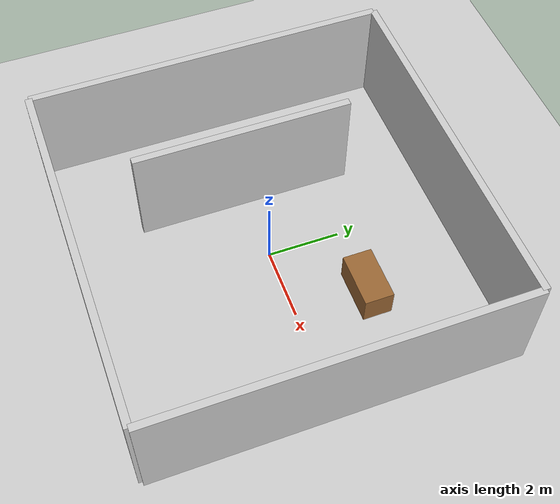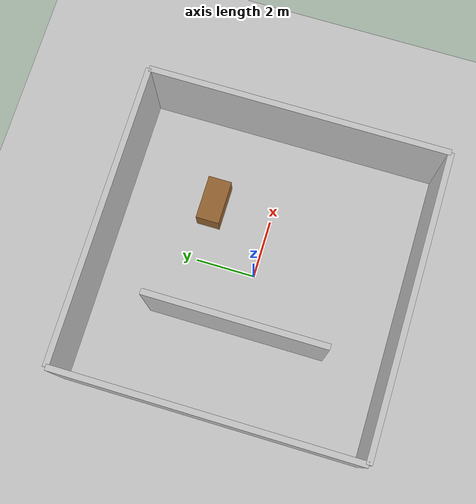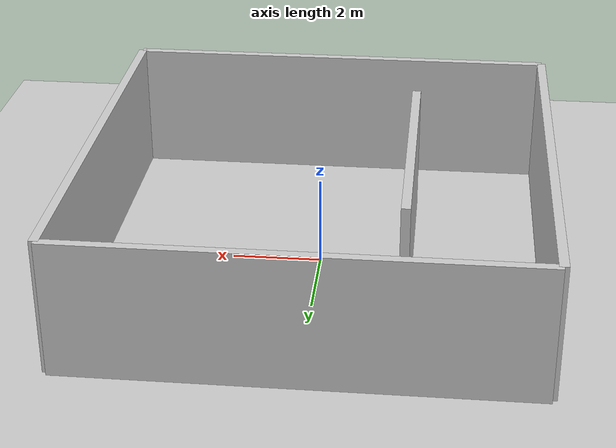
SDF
<?xml version="1.0" ?>
<sdf version="1.6">
  <world name="office_world">
    <include>
      <uri>model://sun</uri>
    </include>
    <include>
      <uri>model://ground_plane</uri>
    </include>

    <!-- Office walls -->
    <model name="office_walls">
      <static>true</static>
      <link name="walls">
        <collision name="wall1_collision">
          <pose>0 5 1.5 0 0 0</pose>
          <geometry>
            <box>
              <size>10 0.2 3</size>
            </box>
          </geometry>
        </collision>
        <visual name="wall1_visual">
          <pose>0 5 1.5 0 0 0</pose>
          <geometry>
            <box>
              <size>10 0.2 3</size>
            </box>
          </geometry>
          <material>
            <ambient>0.8 0.8 0.8 1</ambient>
            <diffuse>0.8 0.8 0.8 1</diffuse>
          </material>
        </visual>

        <collision name="wall2_collision">
          <pose>0 -5 1.5 0 0 0</pose>
          <geometry>
            <box>
              <size>10 0.2 3</size>
            </box>
          </geometry>
        </collision>
        <visual name="wall2_visual">
          <pose>0 -5 1.5 0 0 0</pose>
          <geometry>
            <box>
              <size>10 0.2 3</size>
            </box>
          </geometry>
          <material>
            <ambient>0.8 0.8 0.8 1</ambient>
            <diffuse>0.8 0.8 0.8 1</diffuse>
          </material>
        </visual>

        <collision name="wall3_collision">
          <pose>5 0 1.5 0 0 1.5708</pose>
          <geometry>
            <box>
              <size>10 0.2 3</size>
            </box>
          </geometry>
        </collision>
        <visual name="wall3_visual">
          <pose>5 0 1.5 0 0 1.5708</pose>
          <geometry>
            <box>
              <size>10 0.2 3</size>
            </box>
          </geometry>
          <material>
            <ambient>0.8 0.8 0.8 1</ambient>
            <diffuse>0.8 0.8 0.8 1</diffuse>
          </material>
        </visual>

        <collision name="wall4_collision">
          <pose>-5 0 1.5 0 0 1.5708</pose>
          <geometry>
            <box>
              <size>10 0.2 3</size>
            </box>
          </geometry>
        </collision>
        <visual name="wall4_visual">
          <pose>-5 0 1.5 0 0 1.5708</pose>
          <geometry>
            <box>
              <size>10 0.2 3</size>
            </box>
          </geometry>
          <material>
            <ambient>0.8 0.8 0.8 1</ambient>
            <diffuse>0.8 0.8 0.8 1</diffuse>
          </material>
        </visual>

        <!-- Interior walls and obstacles -->
        <collision name="interior_wall1_collision">
          <pose>-2 0 1.5 0 0 0</pose>
          <geometry>
            <box>
              <size>0.2 6 3</size>
            </box>
          </geometry>
        </collision>
        <visual name="interior_wall1_visual">
          <pose>-2 0 1.5 0 0 0</pose>
          <geometry>
            <box>
              <size>0.2 6 3</size>
            </box>
          </geometry>
          <material>
            <ambient>0.8 0.8 0.8 1</ambient>
            <diffuse>0.8 0.8 0.8 1</diffuse>
          </material>
        </visual>
      </link>
    </model>

    <!-- Add some furniture -->
    <model name="table1">
      <static>true</static>
      <pose>2 2 0.4 0 0 0</pose>
      <link name="link">
        <collision name="collision">
          <geometry>
            <box>
              <size>1.5 0.8 0.8</size>
            </box>
          </geometry>
        </collision>
        <visual name="visual">
          <geometry>
            <box>
              <size>1.5 0.8 0.8</size>
            </box>
          </geometry>
          <material>
            <ambient>0.6 0.4 0.2 1</ambient>
            <diffuse>0.6 0.4 0.2 1</diffuse>
          </material>
        </visual>
      </link>
    </model>
  </world>
</sdf>
